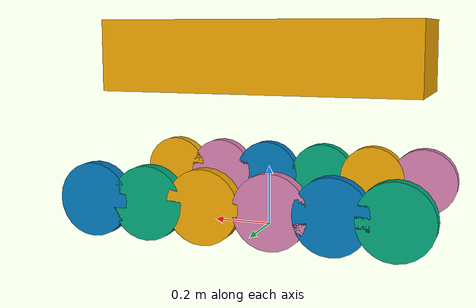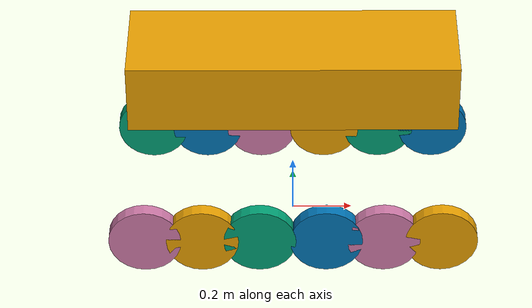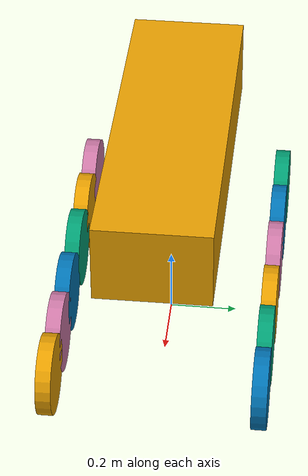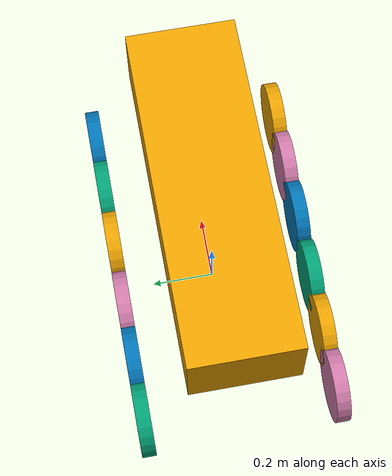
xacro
<?xml version='1.0'?>
<robot xmlns:xacro='http://www.ros.org/wiki/xacro' name='garden_tracked_overrow_belt06'>
  <xacro:property name='variant' value='tracked_overrow_belt06'/>
  <xacro:property name='mass_kg' value='60.0'/>
  <xacro:property name='track_gauge' value='0.62'/>
  <xacro:property name='wheel_radius' value='0.12'/>
  <xacro:property name='body_clearance' value='0.48'/>
  <link name='base_link'>
    <visual name='TRK8-BASE-001_visual'><origin xyz='0 0 0.58' rpy='0 0 0'/><geometry><box size='1.08 0.34 0.24'/></geometry></visual>
    <collision name='TRK8-BASE-001_collision'><origin xyz='0 0 0.57' rpy='0 0 0'/><geometry><box size='0.86 0.26 0.18'/></geometry></collision>
    <inertial><origin xyz='0 0 0.47' rpy='0 0 0'/><mass value='41.0'/><inertia ixx='0.5917666666666667' ixy='0' ixz='0' iyy='4.182000000000001' iyz='0' izz='4.380166666666667'/></inertial>
  </link>
  <link name='left_carrier_0'/>
  <joint name='left_suspension_0' type='prismatic'><parent link='base_link'/><child link='left_carrier_0'/><origin xyz='-0.49 0.31 0.12' rpy='0 0 0'/><axis xyz='0 0 1'/><limit lower='-0.1' upper='0.1' effort='2500' velocity='1.5'/></joint>
  <link name='left_wheel'><visual name='TRK8-SPRUNG-ROLLER-001_visual_left_0'><geometry><cylinder radius='0.12' length='0.045'/></geometry></visual><collision name='TRK8-SPRUNG-ROLLER-001_collision_left_0'><geometry><cylinder radius='0.12' length='0.045'/></geometry></collision></link>
  <joint name='left_joint' type='continuous'><parent link='left_carrier_0'/><child link='left_wheel'/><origin xyz='0 0 0' rpy='1.57079632679 0 0'/><axis xyz='0 0 -1'/></joint>
  <link name='left_carrier_1'/>
  <joint name='left_suspension_1' type='prismatic'><parent link='base_link'/><child link='left_carrier_1'/><origin xyz='-0.3 0.31 0.12' rpy='0 0 0'/><axis xyz='0 0 1'/><limit lower='-0.1' upper='0.1' effort='2500' velocity='1.5'/></joint>
  <link name='left_wheel_1'><visual name='TRK8-SPRUNG-ROLLER-001_visual_left_1'><geometry><cylinder radius='0.12' length='0.045'/></geometry></visual><collision name='TRK8-SPRUNG-ROLLER-001_collision_left_1'><geometry><cylinder radius='0.12' length='0.045'/></geometry></collision></link>
  <joint name='left_joint_1' type='continuous'><parent link='left_carrier_1'/><child link='left_wheel_1'/><origin xyz='0 0 0' rpy='1.57079632679 0 0'/><axis xyz='0 0 -1'/></joint>
  <link name='left_carrier_2'/>
  <joint name='left_suspension_2' type='prismatic'><parent link='base_link'/><child link='left_carrier_2'/><origin xyz='-0.11 0.31 0.12' rpy='0 0 0'/><axis xyz='0 0 1'/><limit lower='-0.1' upper='0.1' effort='2500' velocity='1.5'/></joint>
  <link name='left_wheel_2'><visual name='TRK8-SPRUNG-ROLLER-001_visual_left_2'><geometry><cylinder radius='0.12' length='0.045'/></geometry></visual><collision name='TRK8-SPRUNG-ROLLER-001_collision_left_2'><geometry><cylinder radius='0.12' length='0.045'/></geometry></collision></link>
  <joint name='left_joint_2' type='continuous'><parent link='left_carrier_2'/><child link='left_wheel_2'/><origin xyz='0 0 0' rpy='1.57079632679 0 0'/><axis xyz='0 0 -1'/></joint>
  <link name='left_carrier_3'/>
  <joint name='left_suspension_3' type='prismatic'><parent link='base_link'/><child link='left_carrier_3'/><origin xyz='0.11 0.31 0.12' rpy='0 0 0'/><axis xyz='0 0 1'/><limit lower='-0.1' upper='0.1' effort='2500' velocity='1.5'/></joint>
  <link name='left_wheel_3'><visual name='TRK8-SPRUNG-ROLLER-001_visual_left_3'><geometry><cylinder radius='0.12' length='0.045'/></geometry></visual><collision name='TRK8-SPRUNG-ROLLER-001_collision_left_3'><geometry><cylinder radius='0.12' length='0.045'/></geometry></collision></link>
  <joint name='left_joint_3' type='continuous'><parent link='left_carrier_3'/><child link='left_wheel_3'/><origin xyz='0 0 0' rpy='1.57079632679 0 0'/><axis xyz='0 0 -1'/></joint>
  <link name='left_carrier_4'/>
  <joint name='left_suspension_4' type='prismatic'><parent link='base_link'/><child link='left_carrier_4'/><origin xyz='0.3 0.31 0.12' rpy='0 0 0'/><axis xyz='0 0 1'/><limit lower='-0.1' upper='0.1' effort='2500' velocity='1.5'/></joint>
  <link name='left_wheel_4'><visual name='TRK8-SPRUNG-ROLLER-001_visual_left_4'><geometry><cylinder radius='0.12' length='0.045'/></geometry></visual><collision name='TRK8-SPRUNG-ROLLER-001_collision_left_4'><geometry><cylinder radius='0.12' length='0.045'/></geometry></collision></link>
  <joint name='left_joint_4' type='continuous'><parent link='left_carrier_4'/><child link='left_wheel_4'/><origin xyz='0 0 0' rpy='1.57079632679 0 0'/><axis xyz='0 0 -1'/></joint>
  <link name='left_carrier_5'/>
  <joint name='left_suspension_5' type='prismatic'><parent link='base_link'/><child link='left_carrier_5'/><origin xyz='0.49 0.31 0.12' rpy='0 0 0'/><axis xyz='0 0 1'/><limit lower='-0.1' upper='0.1' effort='2500' velocity='1.5'/></joint>
  <link name='left_wheel_5'><visual name='TRK8-SPRUNG-ROLLER-001_visual_left_5'><geometry><cylinder radius='0.12' length='0.045'/></geometry></visual><collision name='TRK8-SPRUNG-ROLLER-001_collision_left_5'><geometry><cylinder radius='0.12' length='0.045'/></geometry></collision></link>
  <joint name='left_joint_5' type='continuous'><parent link='left_carrier_5'/><child link='left_wheel_5'/><origin xyz='0 0 0' rpy='1.57079632679 0 0'/><axis xyz='0 0 -1'/></joint>
  <link name='right_carrier_0'/>
  <joint name='right_suspension_0' type='prismatic'><parent link='base_link'/><child link='right_carrier_0'/><origin xyz='-0.49 -0.31 0.12' rpy='0 0 0'/><axis xyz='0 0 1'/><limit lower='-0.1' upper='0.1' effort='2500' velocity='1.5'/></joint>
  <link name='right_wheel'><visual name='TRK8-SPRUNG-ROLLER-001_visual_right_0'><geometry><cylinder radius='0.12' length='0.045'/></geometry></visual><collision name='TRK8-SPRUNG-ROLLER-001_collision_right_0'><geometry><cylinder radius='0.12' length='0.045'/></geometry></collision></link>
  <joint name='right_joint' type='continuous'><parent link='right_carrier_0'/><child link='right_wheel'/><origin xyz='0 0 0' rpy='1.57079632679 0 0'/><axis xyz='0 0 -1'/></joint>
  <link name='right_carrier_1'/>
  <joint name='right_suspension_1' type='prismatic'><parent link='base_link'/><child link='right_carrier_1'/><origin xyz='-0.3 -0.31 0.12' rpy='0 0 0'/><axis xyz='0 0 1'/><limit lower='-0.1' upper='0.1' effort='2500' velocity='1.5'/></joint>
  <link name='right_wheel_1'><visual name='TRK8-SPRUNG-ROLLER-001_visual_right_1'><geometry><cylinder radius='0.12' length='0.045'/></geometry></visual><collision name='TRK8-SPRUNG-ROLLER-001_collision_right_1'><geometry><cylinder radius='0.12' length='0.045'/></geometry></collision></link>
  <joint name='right_joint_1' type='continuous'><parent link='right_carrier_1'/><child link='right_wheel_1'/><origin xyz='0 0 0' rpy='1.57079632679 0 0'/><axis xyz='0 0 -1'/></joint>
  <link name='right_carrier_2'/>
  <joint name='right_suspension_2' type='prismatic'><parent link='base_link'/><child link='right_carrier_2'/><origin xyz='-0.11 -0.31 0.12' rpy='0 0 0'/><axis xyz='0 0 1'/><limit lower='-0.1' upper='0.1' effort='2500' velocity='1.5'/></joint>
  <link name='right_wheel_2'><visual name='TRK8-SPRUNG-ROLLER-001_visual_right_2'><geometry><cylinder radius='0.12' length='0.045'/></geometry></visual><collision name='TRK8-SPRUNG-ROLLER-001_collision_right_2'><geometry><cylinder radius='0.12' length='0.045'/></geometry></collision></link>
  <joint name='right_joint_2' type='continuous'><parent link='right_carrier_2'/><child link='right_wheel_2'/><origin xyz='0 0 0' rpy='1.57079632679 0 0'/><axis xyz='0 0 -1'/></joint>
  <link name='right_carrier_3'/>
  <joint name='right_suspension_3' type='prismatic'><parent link='base_link'/><child link='right_carrier_3'/><origin xyz='0.11 -0.31 0.12' rpy='0 0 0'/><axis xyz='0 0 1'/><limit lower='-0.1' upper='0.1' effort='2500' velocity='1.5'/></joint>
  <link name='right_wheel_3'><visual name='TRK8-SPRUNG-ROLLER-001_visual_right_3'><geometry><cylinder radius='0.12' length='0.045'/></geometry></visual><collision name='TRK8-SPRUNG-ROLLER-001_collision_right_3'><geometry><cylinder radius='0.12' length='0.045'/></geometry></collision></link>
  <joint name='right_joint_3' type='continuous'><parent link='right_carrier_3'/><child link='right_wheel_3'/><origin xyz='0 0 0' rpy='1.57079632679 0 0'/><axis xyz='0 0 -1'/></joint>
  <link name='right_carrier_4'/>
  <joint name='right_suspension_4' type='prismatic'><parent link='base_link'/><child link='right_carrier_4'/><origin xyz='0.3 -0.31 0.12' rpy='0 0 0'/><axis xyz='0 0 1'/><limit lower='-0.1' upper='0.1' effort='2500' velocity='1.5'/></joint>
  <link name='right_wheel_4'><visual name='TRK8-SPRUNG-ROLLER-001_visual_right_4'><geometry><cylinder radius='0.12' length='0.045'/></geometry></visual><collision name='TRK8-SPRUNG-ROLLER-001_collision_right_4'><geometry><cylinder radius='0.12' length='0.045'/></geometry></collision></link>
  <joint name='right_joint_4' type='continuous'><parent link='right_carrier_4'/><child link='right_wheel_4'/><origin xyz='0 0 0' rpy='1.57079632679 0 0'/><axis xyz='0 0 -1'/></joint>
  <link name='right_carrier_5'/>
  <joint name='right_suspension_5' type='prismatic'><parent link='base_link'/><child link='right_carrier_5'/><origin xyz='0.49 -0.31 0.12' rpy='0 0 0'/><axis xyz='0 0 1'/><limit lower='-0.1' upper='0.1' effort='2500' velocity='1.5'/></joint>
  <link name='right_wheel_5'><visual name='TRK8-SPRUNG-ROLLER-001_visual_right_5'><geometry><cylinder radius='0.12' length='0.045'/></geometry></visual><collision name='TRK8-SPRUNG-ROLLER-001_collision_right_5'><geometry><cylinder radius='0.12' length='0.045'/></geometry></collision></link>
  <joint name='right_joint_5' type='continuous'><parent link='right_carrier_5'/><child link='right_wheel_5'/><origin xyz='0 0 0' rpy='1.57079632679 0 0'/><axis xyz='0 0 -1'/></joint>
  <!-- Future CAD references: TRK8-BASE-001, TRK8-BELT-06CM-001, TRK8-SPRUNG-ROLLER-001. Visual and collision geometry remain separate. -->
</robot>
